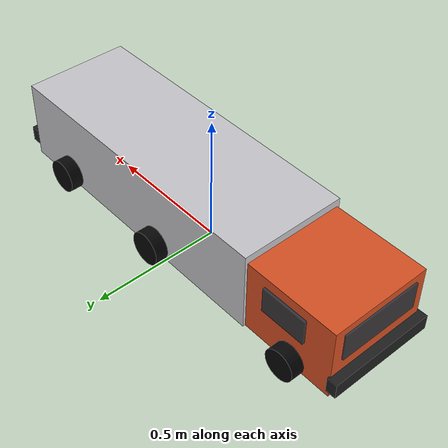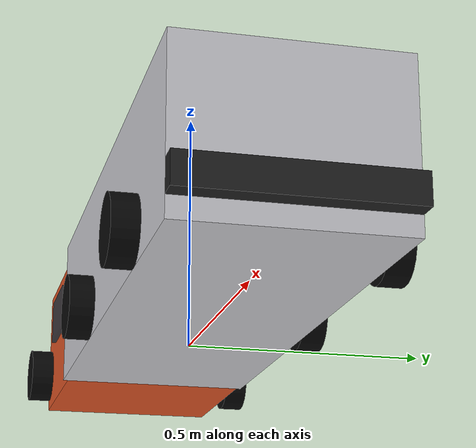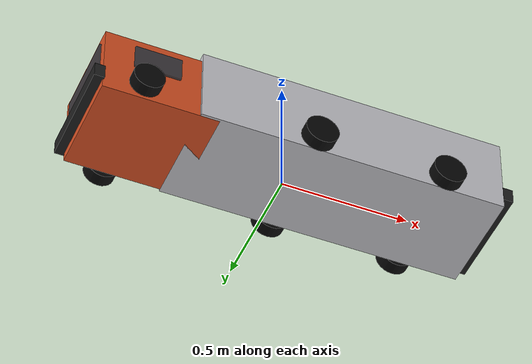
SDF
<sdf version="1.9">
  <model name="big_truck_variant">
    <static>true</static>

    <include>
      <uri>model://full/big_truck</uri>
      <name>big_truck_impl_full</name>
      <pose>0 0 0 0 0 0</pose>
    </include>

    <!-- LITE mode -->
  </model>
</sdf>

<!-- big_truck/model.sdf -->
<sdf version="1.9">
  <model name="big_truck">
    <static>true</static>
    <link name="truck_link">
      <collision name="cargo_collision">
        <pose>0.2 0 0.16 0 0 0</pose>
        <geometry>
          <box>
            <size>1.2 0.42 0.32</size>
          </box>
        </geometry>
      </collision>

      <collision name="cab_collision">
        <pose>-0.55 0 0.145 0 0 0</pose>
        <geometry>
          <box>
            <size>0.45 0.4 0.29</size>
          </box>
        </geometry>
      </collision>

      <visual name="cargo_visual">
        <pose>0.2 0 0.16 0 0 0</pose>
        <geometry>
          <box>
            <size>1.2 0.42 0.32</size>
          </box>
        </geometry>
        <material>
          <ambient>0.78 0.78 0.8 1</ambient>
          <diffuse>0.78 0.78 0.8 1</diffuse>
          <specular>0.05 0.05 0.05 1</specular>
        </material>
      </visual>

      <visual name="cab_visual">
        <pose>-0.55 0 0.145 0 0 0</pose>
        <geometry>
          <box>
            <size>0.45 0.4 0.29</size>
          </box>
        </geometry>
        <material>
          <ambient>0.85 0.32 0.14 1</ambient>
          <diffuse>0.85 0.32 0.14 1</diffuse>
          <specular>0.05 0.05 0.05 1</specular>
        </material>
      </visual>

      <visual name="windshield_visual">
        <pose>-0.777 0 0.205 0 0 0</pose>
        <geometry>
          <box>
            <size>0.01 0.32 0.11</size>
          </box>
        </geometry>
        <material>
          <ambient>0.18 0.25 0.3 0.85</ambient>
          <diffuse>0.18 0.25 0.3 0.85</diffuse>
          <specular>0.2 0.2 0.2 1</specular>
        </material>
      </visual>

      <visual name="left_window_visual">
        <pose>-0.57 0.205 0.2 0 0 0</pose>
        <geometry>
          <box>
            <size>0.18 0.01 0.1</size>
          </box>
        </geometry>
        <material>
          <ambient>0.18 0.25 0.3 0.85</ambient>
          <diffuse>0.18 0.25 0.3 0.85</diffuse>
          <specular>0.2 0.2 0.2 1</specular>
        </material>
      </visual>

      <visual name="right_window_visual">
        <pose>-0.57 -0.205 0.2 0 0 0</pose>
        <geometry>
          <box>
            <size>0.18 0.01 0.1</size>
          </box>
        </geometry>
        <material>
          <ambient>0.18 0.25 0.3 0.85</ambient>
          <diffuse>0.18 0.25 0.3 0.85</diffuse>
          <specular>0.2 0.2 0.2 1</specular>
        </material>
      </visual>

      <visual name="front_bumper_visual">
        <pose>-0.79 0 0.065 0 0 0</pose>
        <geometry>
          <box>
            <size>0.04 0.42 0.06</size>
          </box>
        </geometry>
        <material>
          <ambient>0.12 0.12 0.12 1</ambient>
          <diffuse>0.12 0.12 0.12 1</diffuse>
          <specular>0.15 0.15 0.15 1</specular>
        </material>
      </visual>

      <visual name="rear_bumper_visual">
        <pose>0.82 0 0.07 0 0 0</pose>
        <geometry>
          <box>
            <size>0.04 0.42 0.06</size>
          </box>
        </geometry>
        <material>
          <ambient>0.12 0.12 0.12 1</ambient>
          <diffuse>0.12 0.12 0.12 1</diffuse>
          <specular>0.15 0.15 0.15 1</specular>
        </material>
      </visual>

      <visual name="axle_front_left_tire_visual">
        <pose>-0.62 0.24 0.055 1.5708 0 0</pose>
        <geometry>
          <cylinder>
            <radius>0.06</radius>
            <length>0.05</length>
          </cylinder>
        </geometry>
        <material>
          <ambient>0.03 0.03 0.03 1</ambient>
          <diffuse>0.03 0.03 0.03 1</diffuse>
          <specular>0.02 0.02 0.02 1</specular>
        </material>
      </visual>

      <visual name="axle_front_right_tire_visual">
        <pose>-0.62 -0.24 0.055 1.5708 0 0</pose>
        <geometry>
          <cylinder>
            <radius>0.06</radius>
            <length>0.05</length>
          </cylinder>
        </geometry>
        <material>
          <ambient>0.03 0.03 0.03 1</ambient>
          <diffuse>0.03 0.03 0.03 1</diffuse>
          <specular>0.02 0.02 0.02 1</specular>
        </material>
      </visual>

      <visual name="axle_mid_left_tire_visual">
        <pose>0.05 0.24 0.055 1.5708 0 0</pose>
        <geometry>
          <cylinder>
            <radius>0.065</radius>
            <length>0.05</length>
          </cylinder>
        </geometry>
        <material>
          <ambient>0.03 0.03 0.03 1</ambient>
          <diffuse>0.03 0.03 0.03 1</diffuse>
          <specular>0.02 0.02 0.02 1</specular>
        </material>
      </visual>

      <visual name="axle_mid_right_tire_visual">
        <pose>0.05 -0.24 0.055 1.5708 0 0</pose>
        <geometry>
          <cylinder>
            <radius>0.065</radius>
            <length>0.05</length>
          </cylinder>
        </geometry>
        <material>
          <ambient>0.03 0.03 0.03 1</ambient>
          <diffuse>0.03 0.03 0.03 1</diffuse>
          <specular>0.02 0.02 0.02 1</specular>
        </material>
      </visual>

      <visual name="axle_rear_left_tire_visual">
        <pose>0.56 0.24 0.055 1.5708 0 0</pose>
        <geometry>
          <cylinder>
            <radius>0.065</radius>
            <length>0.05</length>
          </cylinder>
        </geometry>
        <material>
          <ambient>0.03 0.03 0.03 1</ambient>
          <diffuse>0.03 0.03 0.03 1</diffuse>
          <specular>0.02 0.02 0.02 1</specular>
        </material>
      </visual>

      <visual name="axle_rear_right_tire_visual">
        <pose>0.56 -0.24 0.055 1.5708 0 0</pose>
        <geometry>
          <cylinder>
            <radius>0.065</radius>
            <length>0.05</length>
          </cylinder>
        </geometry>
        <material>
          <ambient>0.03 0.03 0.03 1</ambient>
          <diffuse>0.03 0.03 0.03 1</diffuse>
          <specular>0.02 0.02 0.02 1</specular>
        </material>
      </visual>
    </link>
  </model>
</sdf>
